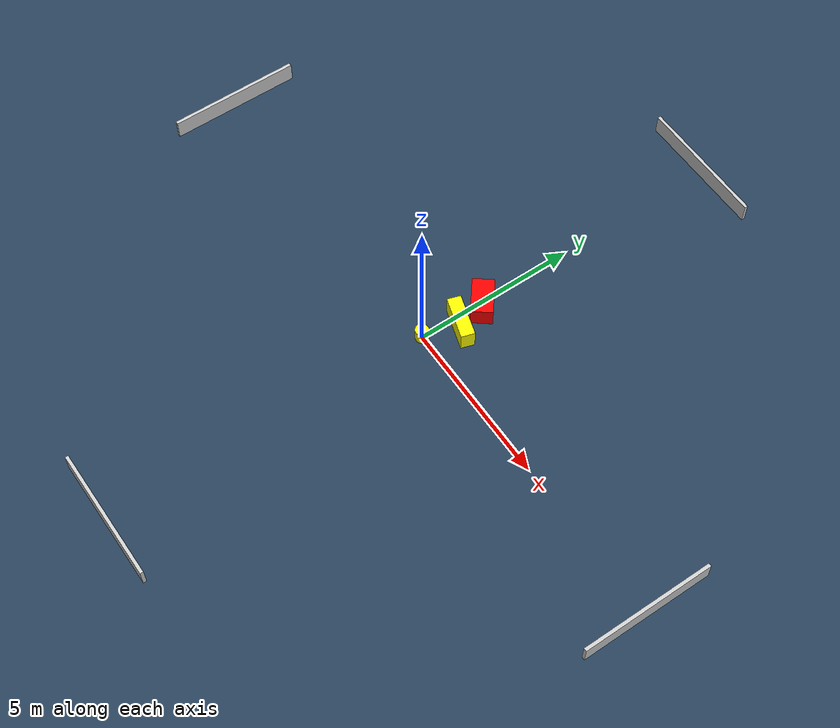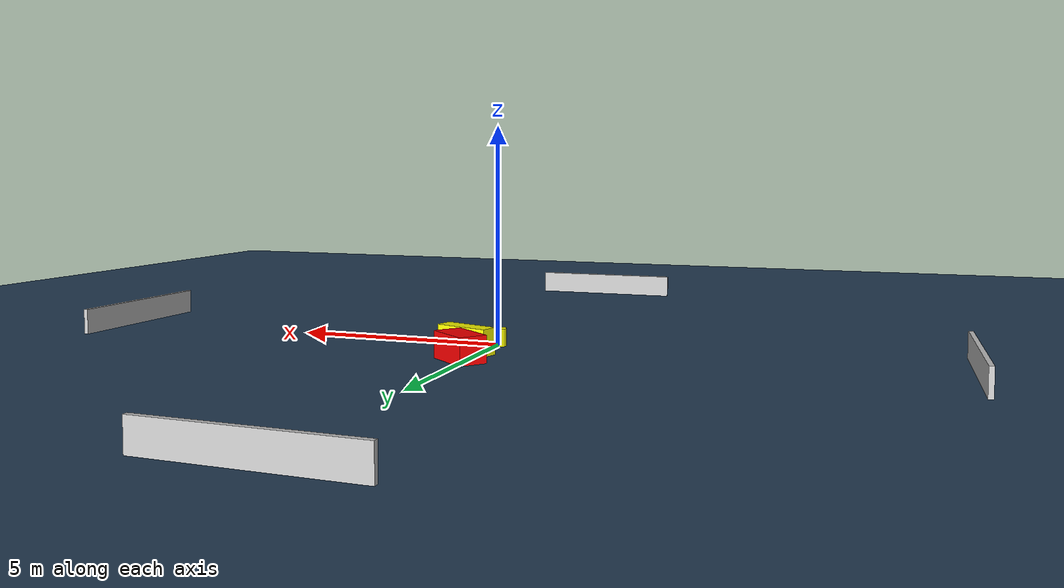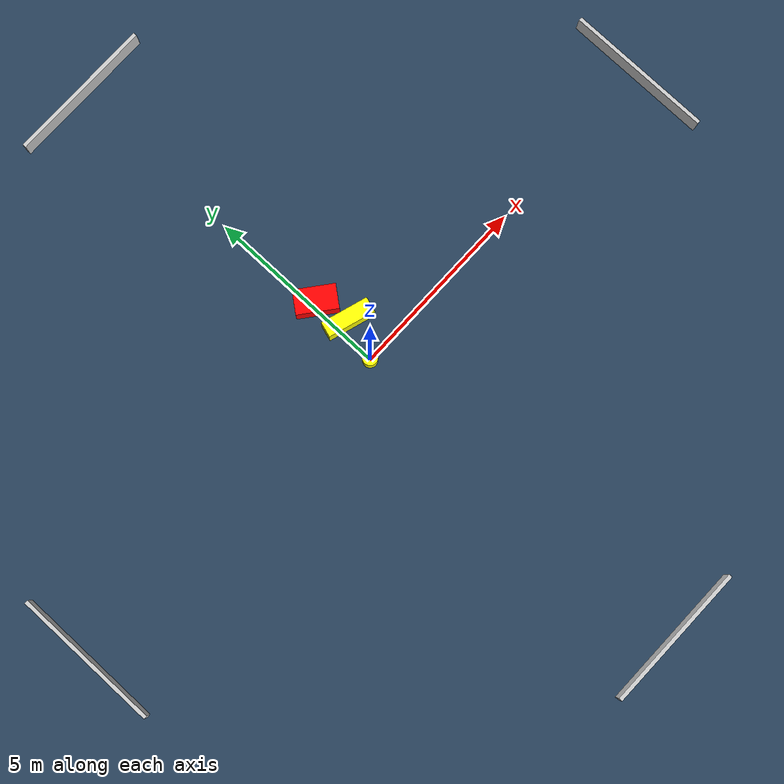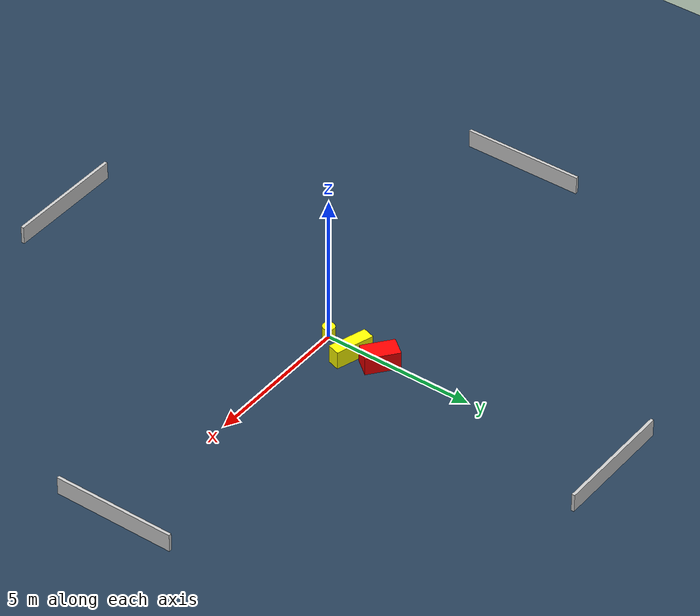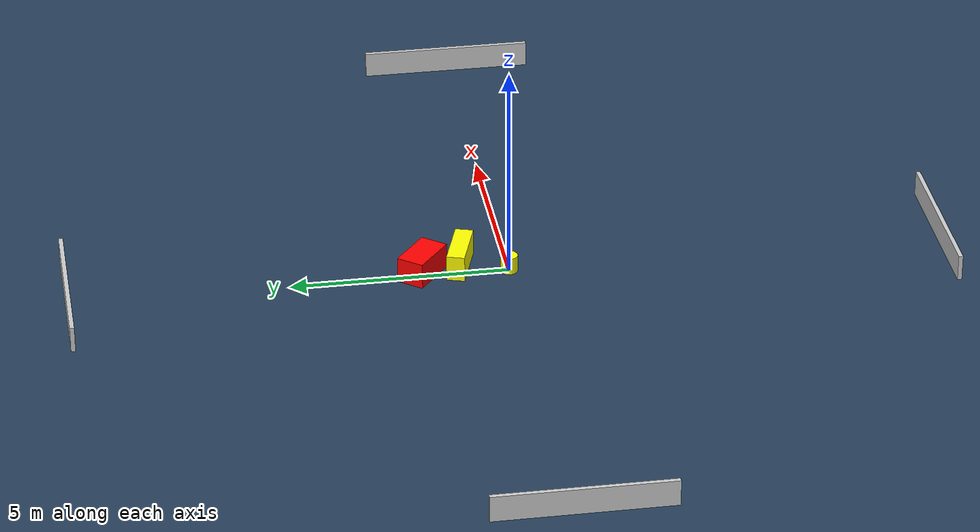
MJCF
<?xml version="1.0" ?>
<mujoco model="generated_environment">
  <option timestep="0.01" integrator="RK4" cone="elliptic"/>
  <default>
    <geom density="1"/>
  </default>
  <asset>
    <texture builtin="gradient" height="3072" name="skybox" rgb1="0.3 0.5 0.7" rgb2="0 0 0" type="skybox" width="512"/>
    <texture builtin="checker" height="300" name="groundplane" rgb1="0.2 0.3 0.4" rgb2="0.1 0.2 0.3" type="2d" width="300"/>
    <material name="groundplane" reflectance="0.2" texrepeat="5 5" texture="groundplane"/>
  </asset>
  <worldbody>
    <light dir="0 0 -1" directional="true" pos="0 0 1.5"/>
    <geom condim="3" friction="0.5 0.005 0.001" material="groundplane" name="floor" pos="0 0 0" size="0 0 0.05" type="plane"/>
    <body name="walls">
      <geom name="wall_1" condim="4" pos="-10.0 0.0 0.3" rgba="0.800000011920929 0.800000011920929 0.800000011920929 1.0" size="0.05 2.0 0.3" type="box"/>
      <geom name="wall_2" condim="4" pos="10.0 0.0 0.3" rgba="0.800000011920929 0.800000011920929 0.800000011920929 1.0" size="0.05 2.0 0.3" type="box"/>
      <geom name="wall_3" condim="4" pos="0.0 -10.0 0.3" rgba="0.800000011920929 0.800000011920929 0.800000011920929 1.0" size="2.0 0.05 0.3" type="box"/>
      <geom name="wall_4" condim="4" pos="0.0 10.0 0.3" rgba="0.800000011920929 0.800000011920929 0.800000011920929 1.0" size="2.0 0.05 0.3" type="box"/>
    </body>
    <body name="robot">
      <joint name="joint_x" type="slide" pos="0 0 0" axis="1 0 0"/>
      <joint name="joint_y" type="slide" pos="0 0 0" axis="0 1 0"/>
      <geom name="robot" type="cylinder" pos="0.0 0.0 0.2" size="0.2 0.2 0.0" mass="5.0" friction="1.0 0.005 0.0001" condim="4" rgba="1.0 1.0 0.0 1.0"/>
    </body>
    <body name="obstacle_1_movable">
      <geom name="obstacle_1_movable" condim="4" pos="0.3499452226454391 1.0710397915379737 0.3" euler="0 0 252.66900473298938" friction="0.0 0.005 0.001" rgba="1.0 1.0 0.0 1.0" size="0.20710508275235903 0.6461590097255594 0.3" type="box" mass="0.1"/>
      <joint type="free"/>
    </body>
    <body name="obstacle_2_static">
      <geom name="obstacle_2_static" condim="4" pos="0.13514612730354233 1.9653528875574662 0.3" euler="0 0 141.80548193770136" friction="0.0 0.005 0.001" rgba="1.0 0.0 0.0 1.0" size="0.5500229884741805 0.3227547860222214 0.3" type="box"/>
    </body>
  </worldbody>
  <actuator>
    <motor name="actuator_x" joint="joint_x" gear="1" ctrlrange="-1 1"/>
    <motor name="actuator_y" joint="joint_y" gear="1" ctrlrange="-1 1"/>
  </actuator>
</mujoco>
